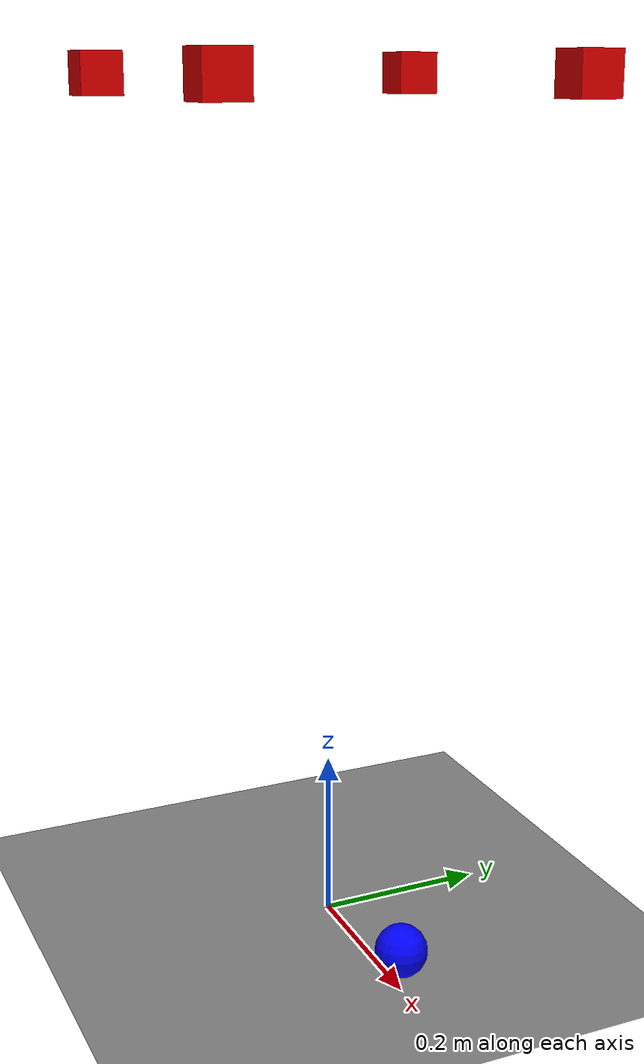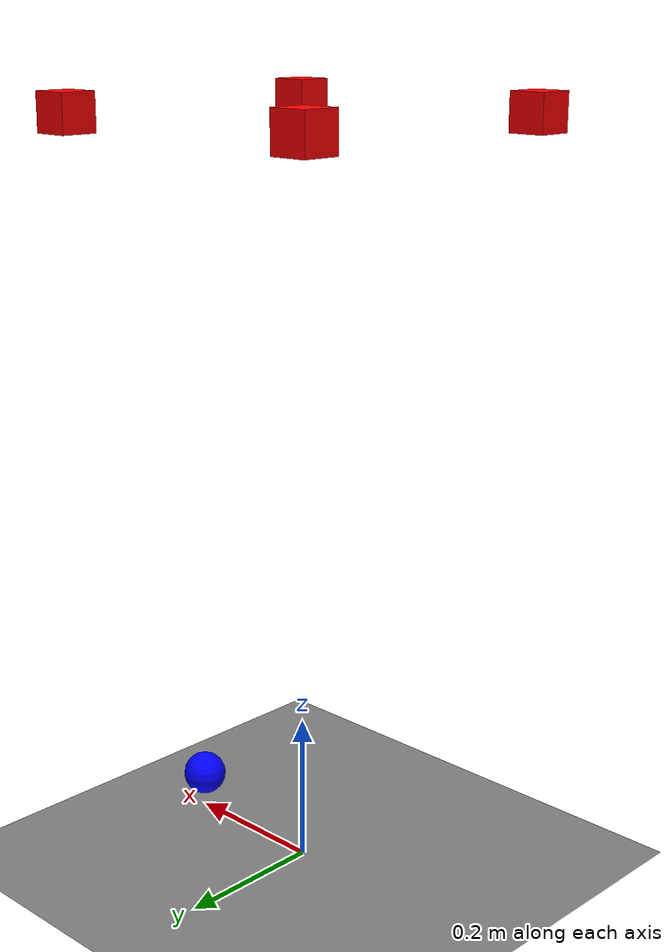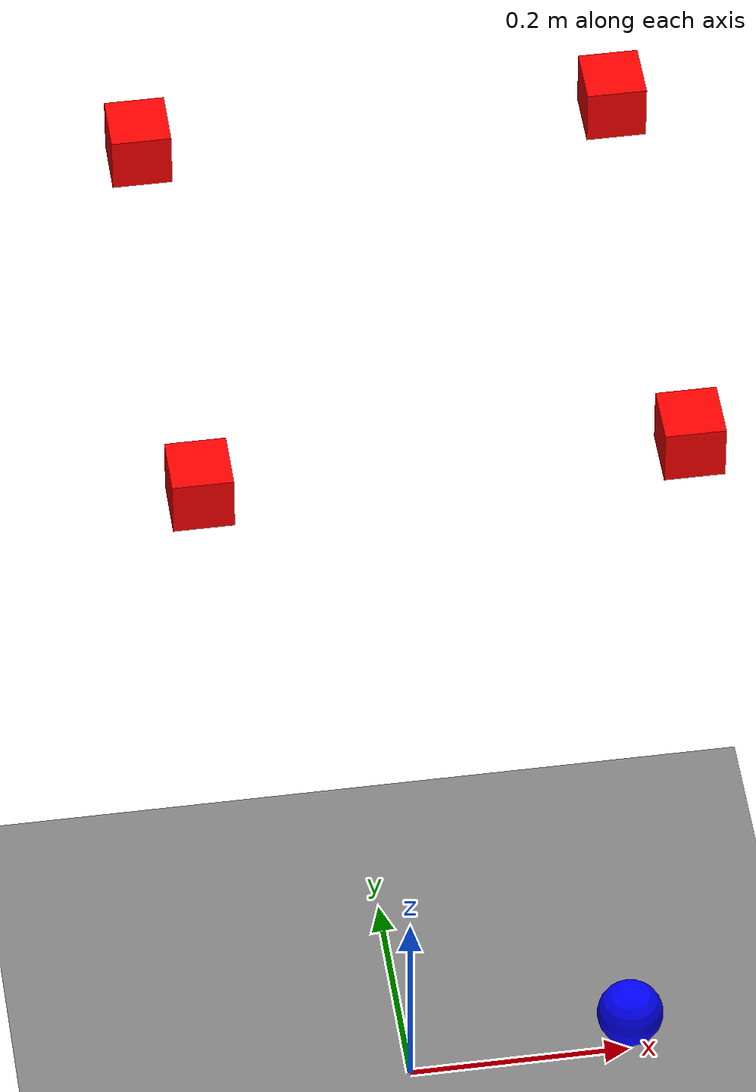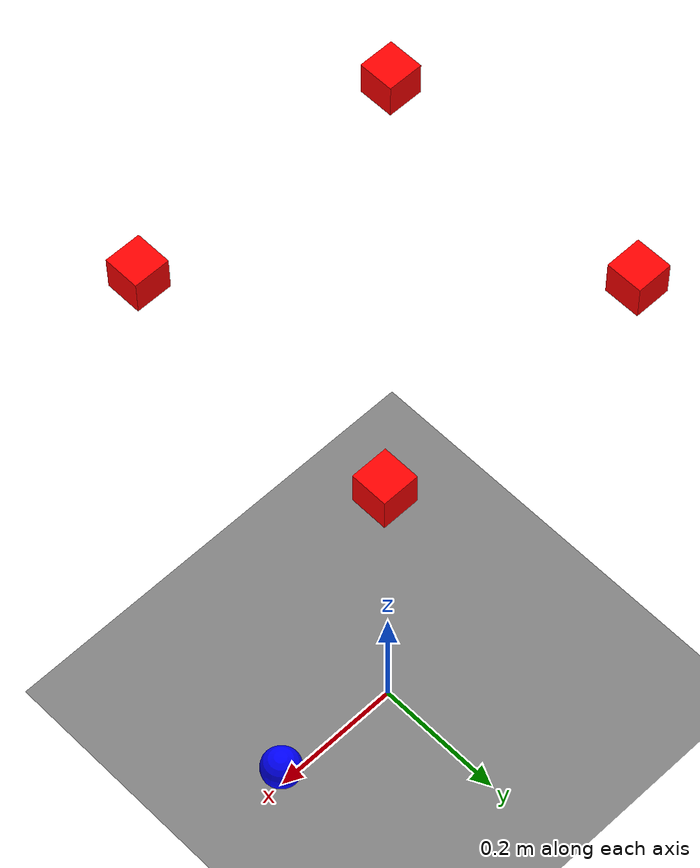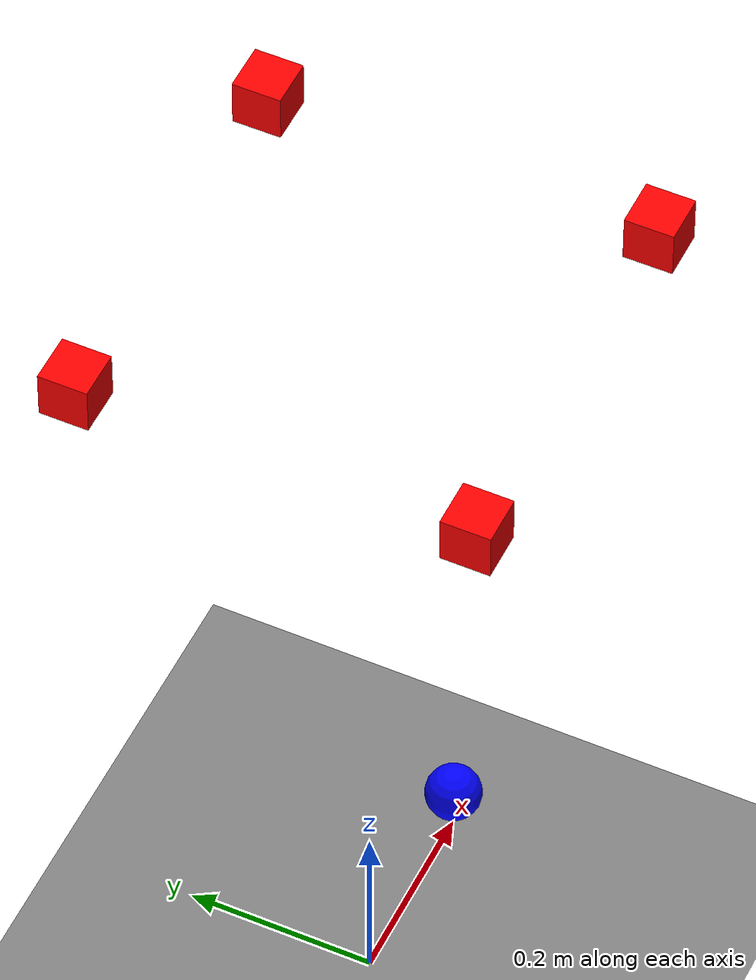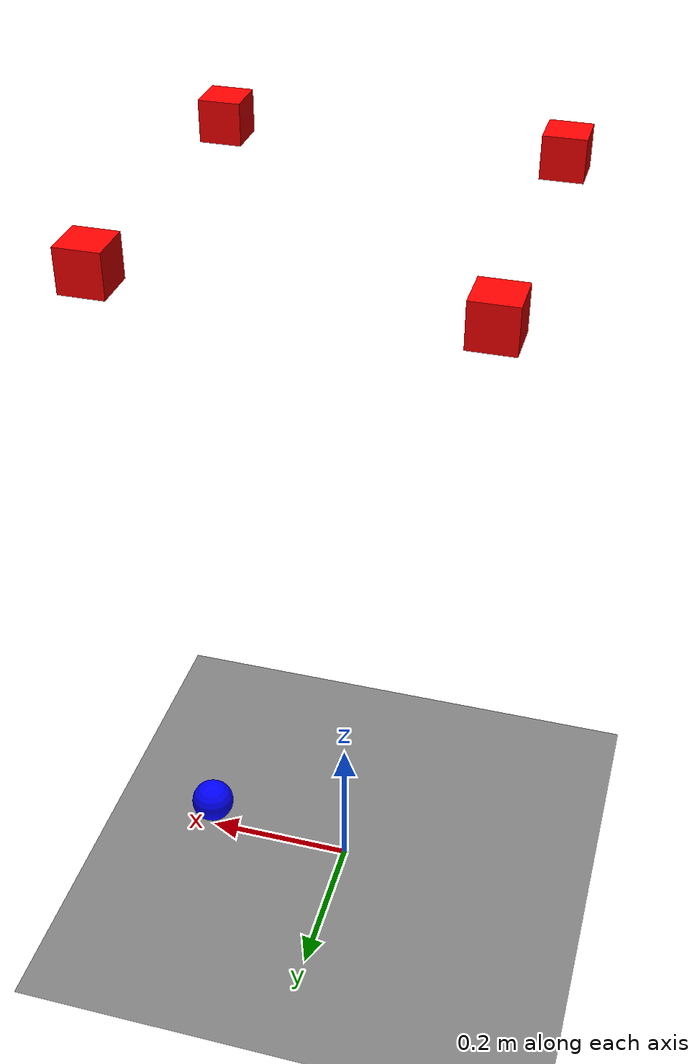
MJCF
<mujoco>
  <option gravity="0 0 -9.81" />
  <compiler autolimits="true" angle="degree" coordinate="local"/>
  <actuator>
    <velocity name="ee_x" joint="ee_x" gear="1" kv="10" forcerange="-100 100"/>
    <velocity name="ee_y" joint="ee_y" gear="1" kv="10" forcerange="-100 100"/>
  </actuator>
  <worldbody>
    <body name="table" pos="0 0 0">
      <geom type="plane" size="1 1 0.1" rgba="0.5 0.5 0.5 1" contype="1" conaffinity="1"/>
    </body>

    <!-- End-effector -->
    <body name="ee" pos="0.2 0 0.05">
      <geom type="sphere" size="0.03" rgba="0 0 1 1"/>
      <joint name="ee_x" type="slide" axis="1 0 0"/>
      <joint name="ee_y" type="slide" axis="0 1 0"/>
    </body>

    <!-- Multiple cubes -->
    <!-- Loop in Python or generate MJCF -->
    <body name="obj0" pos="0.2 0.2 1">
			<inertial mass="0.1" diaginertia="0.00004 0.00004 0.00004" pos="0 0 0"/>
      <geom type="box" size="0.025 0.025 0.025" rgba="1 0 0 1"/>
      <joint type="free"/>
    </body>
    <!-- repeat for obj1, obj2, ... -->
    <body name="obj1" pos="-0.2 0.2 1">
			<inertial mass="0.1" diaginertia="0.00004 0.00004 0.00004" pos="0 0 0"/>
      <geom type="box" size="0.025 0.025 0.025" rgba="1 0 0 1"/>
      <joint type="free"/>
    </body>
    <body name="obj2" pos="0.2 -0.2 1">
			<inertial mass="0.1" diaginertia="0.00004 0.00004 0.00004" pos="0 0 0"/>
      <geom type="box" size="0.025 0.025 0.025" rgba="1 0 0 1"/>
      <joint type="free"/>
    </body>
    <body name="obj3" pos="-0.2 -0.2 1">
			<inertial mass="0.1" diaginertia="0.00004 0.00004 0.00004" pos="0 0 0"/>
      <geom type="box" size="0.025 0.025 0.025" rgba="1 0 0 1"/>
      <joint type="free"/>
    </body>
  </worldbody>
</mujoco>
